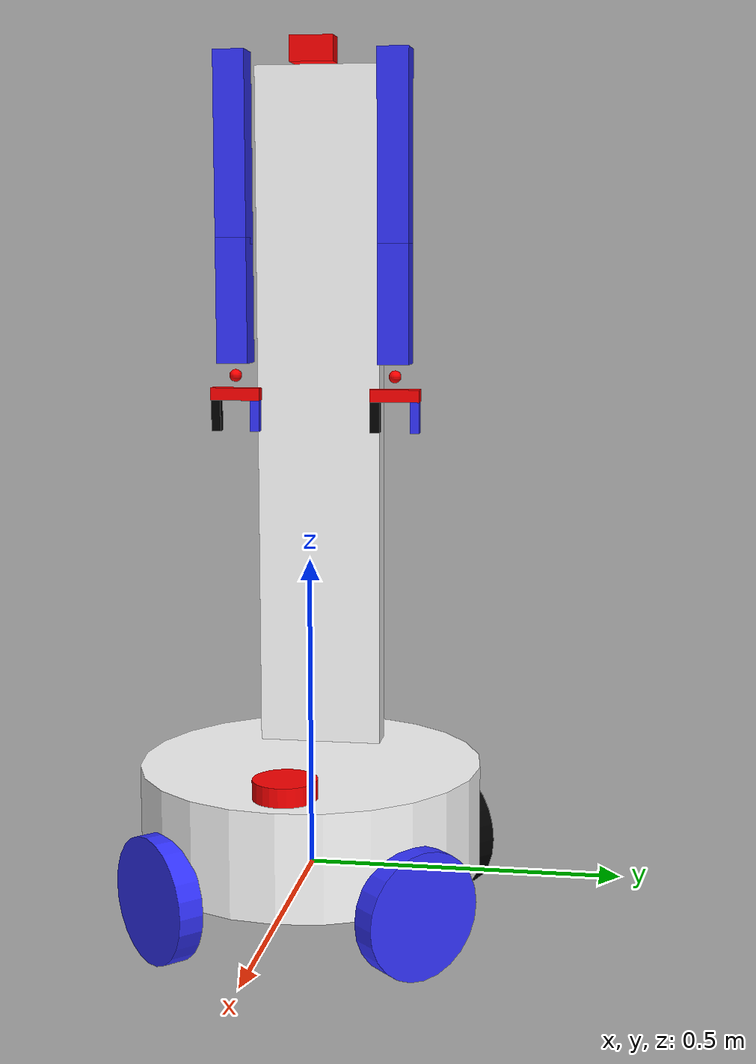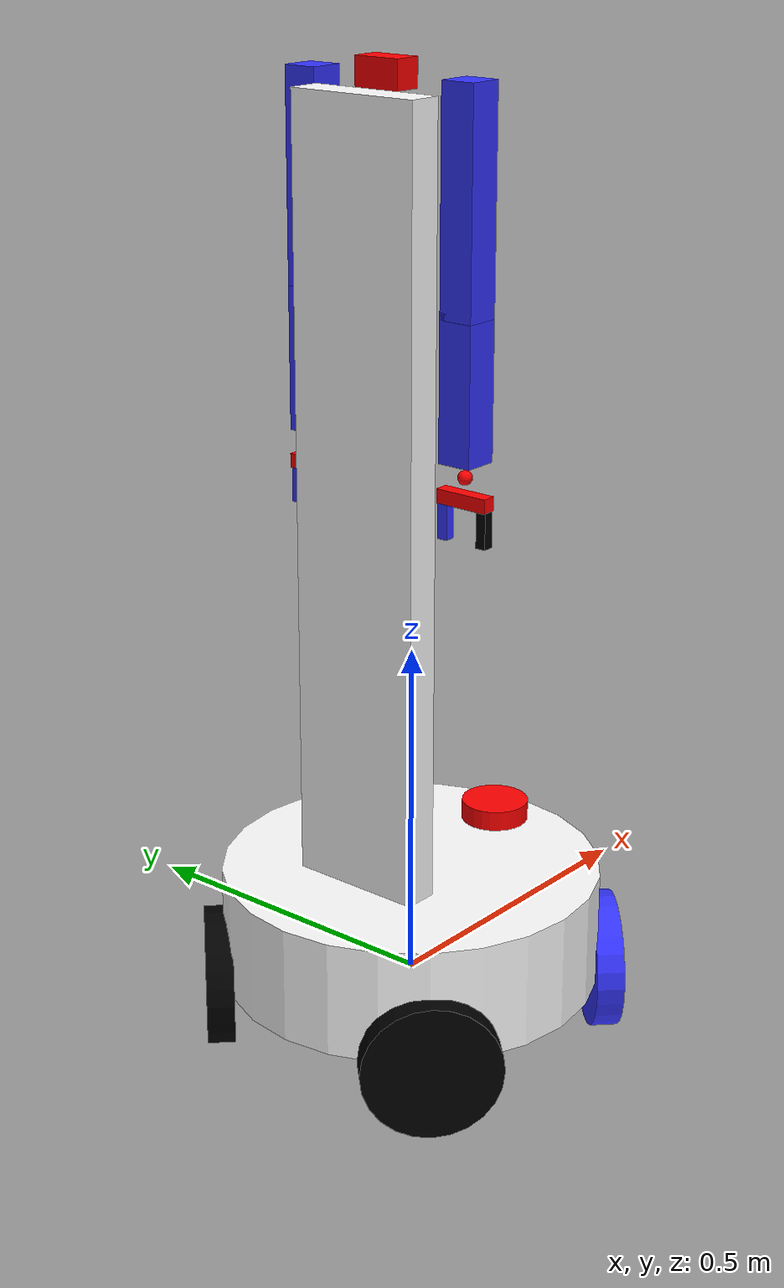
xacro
<?xml version="1.0"?>
<robot xmlns:xacro="http://www.ros.org/wiki/xacro"  name="robot">

    <xacro:include filename="robot_core_Rui.xacro" />
    <xacro:include filename="lidar.xacro" />
    <xacro:include filename="camera.xacro" />
    <xacro:include filename="left_arm.xacro" />
    <xacro:include filename="right_arm.xacro" />

</robot>

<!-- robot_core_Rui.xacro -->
<robot xmlns:xacro="http://www.ros.org/wiki/xacro" >

    <xacro:include filename="inertial_macros.xacro"/>
    <xacro:include filename="gazebo_control.xacro" />

    <material name="white">
        <color rgba="1 1 1 1"/>
    </material>
    <material name="blue">
        <color rgba="0.2 0.2 1 1"/>
    </material>
    <material name="black">
        <color rgba="0 0 0 1"/>
    </material>
    <material name="red">
        <color rgba="1 0 0 1"/>
    </material>

    <!--BASE LINK-->
    <link name="base_link">
    </link>

    <!--BASE FOOTPRINT LINK-->
    <joint name="base_footprint_joint" type="fixed">
        <parent link="base_link"/>
        <child link="base_footprint"/>
        <origin xyz="0 0 0" rpy="0 0 0"/>
    </joint>

    <link name="base_footprint">
    </link>

    <!--CHASSI-->
    <joint name="chassi_joint" type="fixed">
        <parent link="base_link"/>
        <child link="chassi_link"/>
        <origin xyz="0 0 0"/> <!--VIRADO PARA X-->
    </joint>

    <link name="chassi_link">
        <visual>
            <origin xyz="0 0 0.085"/>
            <geometry>
                <cylinder radius="0.275" length="0.17"/>
            </geometry>
            <material name="white"/>
        </visual>
        <collision>
            <origin xyz="0 0 0.085"/>
            <geometry>
                <cylinder radius="0.275" length="0.17"/>
            </geometry>
        </collision>
        <xacro:inertial_cylinder mass="0.1" length="0.17" radius="0.275">
            <origin xyz="0 0 0.085" rpy="0 0 0"/>
        </xacro:inertial_cylinder>
    </link>

    <gazebo reference="chassi_link">
        <material>Gazebo/White</material>
    </gazebo>

    <!--BODY-->
    <joint name="body_joint" type="fixed">
        <parent link="chassi_link"/>
        <child link="body_link"/>
        <origin xyz="-0.1 0 0.18" rpy="0 0 0"/>
    </joint>

    <link name="body_link">
        <visual>
            <origin xyz="0 0 0.55" rpy="0 0 ${pi/2}"/>
            <geometry>
                <box size="0.2 0.05 1.1"/>
            </geometry>
            <material name="white"/>
        </visual>
        <collision>
            <origin xyz="0 0 0.55" rpy="0 0 ${pi/2}"/>
            <geometry>
                <box size="0.2 0.05 1.1"/>
            </geometry>
        </collision>
        <xacro:inertial_box mass="0.1" x="0.2" y="0.05" z="1.1">
            <origin xyz="0 0 0.55" rpy="0 0 0"/>
        </xacro:inertial_box>
    </link>

    <gazebo reference="body_link">
        <material>Gazebo/White</material>
    </gazebo>

    <!--WHEELS-->

    <!--LEFT FRONT-->
    <joint name="left_front_joint" type="fixed">
        <parent link="chassi_link"/>
        <child link="left_front_link"/>
        <origin xyz="0.2 0.2 0" rpy="-${pi/2} 0 -${pi/4}"/>
    </joint>

    <link name="left_front_link">
        <visual>
            <geometry>
                <cylinder radius="0.1" length="0.04"/>
            </geometry>
            <material name="blue"/>
        </visual>
        <collision>
            <geometry>
                <cylinder radius="0.1" length="0.04"/>
            </geometry>
        </collision>
        <xacro:inertial_cylinder mass="0.1" length="0.04" radius="0.1">
            <origin xyz="0 0 0" rpy="0 0 0"/>
        </xacro:inertial_cylinder>
    </link>

    <gazebo reference="left_front_link">
        <material>Gazebo/Blue</material>
        <mu1 value="0.001"/>
        <mu2 value="0.001"/>
    </gazebo>

    <!--LEFT BACK-->
    <joint name="left_back_joint" type="fixed">
        <parent link="chassi_link"/>
        <child link="left_back_link"/>
        <origin xyz="-0.2 0.2 0" rpy="0 -${pi/2} -${pi/4}"/>
    </joint>

    <link name="left_back_link">
        <visual>
            <geometry>
                <cylinder radius="0.1" length="0.04"/>
            </geometry>
            <material name="black"/>
        </visual>
        <collision>
            <geometry>
                <cylinder radius="0.1" length="0.04"/>
            </geometry>
        </collision>
        <xacro:inertial_cylinder mass="0.1" length="0.04" radius="0.1">
            <origin xyz="0 0 0" rpy="0 0 0"/>
        </xacro:inertial_cylinder>
    </link>

    <gazebo reference="left_back_link">
        <material>Gazebo/Black</material>
        <mu1 value="0.001"/>
        <mu2 value="0.001"/>
    </gazebo>

    <!--RIGHT FRONT-->
    <joint name="right_front_joint" type="fixed">
        <parent link="chassi_link"/>
        <child link="right_front_link"/>
        <origin xyz="0.2 -0.2 0" rpy="0 ${pi/2} -${pi/4}"/>
    </joint>

    <link name="right_front_link">
        <visual>
            <geometry>
                <cylinder radius="0.1" length="0.04"/>
            </geometry>
            <material name="blue"/>
        </visual>
        <collision>
            <geometry>
                <cylinder radius="0.1" length="0.04"/>
            </geometry>
        </collision>
        <xacro:inertial_cylinder mass="0.1" length="0.04" radius="0.1">
            <origin xyz="0 0 0" rpy="0 0 0"/>
        </xacro:inertial_cylinder>
    </link>

    <gazebo reference="right_front_link">
        <material>Gazebo/Blue</material>
        <mu1 value="0.001"/>
        <mu2 value="0.001"/>
    </gazebo>

    <!--RIGHT BACK-->
    <joint name="right_back_joint" type="fixed">
        <parent link="chassi_link"/>
        <child link="right_back_link"/>
        <origin xyz="-0.2 -0.2 0" rpy="${pi/2} 0 -${pi/4}"/>
    </joint>

    <link name="right_back_link">
        <visual>
            <geometry>
                <cylinder radius="0.1" length="0.04"/>
            </geometry>
            <material name="black"/>
        </visual>
        <collision>
            <geometry>
                <cylinder radius="0.1" length="0.04"/>
            </geometry>
        </collision>
        <xacro:inertial_cylinder mass="0.1" length="0.04" radius="0.1">
            <origin xyz="0 0 0" rpy="0 0 0"/>
        </xacro:inertial_cylinder>
    </link>

    <gazebo reference="right_back_link">
        <material>Gazebo/Black</material>
        <mu1 value="0.001"/>
        <mu2 value="0.001"/>
    </gazebo>

    <xacro:omni_steering/>

</robot>

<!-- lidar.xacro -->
<robot xmlns:xacro="http://www.ros.org/wiki/xacro">

    <joint name="lidar_joint" type="fixed">
        <parent link="chassi_link"/>
        <child link="lidar_frame"/>
        <origin xyz="0.2 0 0.18" rpy="0 0 0"/>
    </joint>

    <link name="lidar_frame">
        <visual>
            <geometry>
                <cylinder radius="0.05" length="0.04"/>
            </geometry>
            <material name="red"/>
        </visual>
        <collision>
            <geometry>
                <cylinder radius="0.05" length="0.04"/>
            </geometry>
        </collision>
        <xacro:inertial_cylinder mass="0.1" length="0.04" radius="0.05">
            <origin xyz="0 0 0" rpy="0 0 0"/>
        </xacro:inertial_cylinder>
    </link>

    <gazebo reference="lidar_frame">
        <material>Gazebo/Red</material>

        <sensor name="laser" type="ray">
            <pose> 0 0 0 0 0 0 </pose>
            <visualize>false</visualize>
            <update_rate>10</update_rate>
            <ray>
                <scan>
                    <horizontal>
                        <samples>360</samples>
                        <min_angle>-2.356</min_angle> <!--180 degrees-->
                        <max_angle>2.356</max_angle>
                    </horizontal>
                </scan>
                <range>
                    <min>0.3</min>
                    <max>12</max>
                </range>
            </ray>
            <plugin name="laser_controller" filename="libgazebo_ros_ray_sensor.so">
                <ros>
                    <argument>~/out:=scan</argument>
                </ros>
                <output_type>sensor_msgs/LaserScan</output_type>
                <frame_name>lidar_frame</frame_name>
            </plugin>
        </sensor>
    </gazebo>

</robot>

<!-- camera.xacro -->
<robot xmlns:xacro="http://www.ros.org/wiki/xacro">

    <joint name="neck_joint" type="fixed">
        <parent link="body_link"/>
        <child link="neck_link"/>
        <origin xyz="0.045 0 1.12" rpy="0 0 0"/>
    </joint>

    <link name="neck_link">
        <xacro:inertial_box mass="0.1" x="0" y="0" z="0">
            <origin xyz="0 0 0" rpy="0 0 0"/>
        </xacro:inertial_box>
    </link>

    <joint name="camera_joint_z" type="revolute">
        <parent link="neck_link"/>
        <child link="camera_link_z"/>
        <origin xyz="0 0 0" rpy="0 0 0"/>
        <axis xyz="0 1 0"/>
        <limit effort="1000.0" lower="0.0" upper="0.548" velocity="0.5"/>
    </joint>

    <link name="camera_link_z">
        <xacro:inertial_box mass="0.1" x="0" y="0" z="0">
            <origin xyz="0 0 0" rpy="0 0 0"/>
        </xacro:inertial_box>
    </link>

    <joint name="camera_joint_y" type="revolute">
        <parent link="camera_link_z"/>
        <child link="camera_link_y"/>
        <origin xyz="0 0 0" rpy="0 0 0"/>
        <axis xyz="0 0 1"/>
        <limit effort="1000.0" lower="-0.548" upper="0.548" velocity="0.5"/>
    </joint>

    <link name="camera_link_y">
        <xacro:inertial_box mass="0.1" x="0" y="0" z="0">
            <origin xyz="0 0 0" rpy="0 0 0"/>
        </xacro:inertial_box>
    </link>

    <joint name="camera_joint" type="fixed">
        <parent link="camera_link_y"/>
        <child link="camera_link"/>
        <origin xyz="0 0 0" rpy="0 0 0"/>
    </joint>

    <link name="camera_link">
        <visual>
            <geometry>
                <box size="0.04 0.07 0.04"/>
            </geometry>
            <material name="red"/>
        </visual>
        <xacro:inertial_box mass="0.1" x="0.04" y="0.07" z="0.04">
            <origin xyz="0 0 0" rpy="0 0 0"/>
        </xacro:inertial_box>
    </link>

    <joint name="camera_optical_joint" type="fixed">
        <parent link="camera_link"/>
        <child link="camera_link_optical"/>
        <origin xyz="0 0 0" rpy="${-pi/2} 0 ${-pi/2}"/>
    </joint>

    <link name="camera_link_optical"></link>

    <gazebo reference="camera_link">
        <material>Gazebo/Red</material>

        <sensor name="camera" type="camera">
            <pose> 0 0 0 0 0 0 </pose>
            <visualize>true</visualize>
            <update_rate>10</update_rate>
            <camera>
                <horizontal_fov>1.089</horizontal_fov>
                <image>
                    <format>R8G8B8</format>
                    <width>640</width>
                    <height>480</height>
                </image>
                <clip>
                    <near>0.05</near>
                    <far>8.0</far>
                </clip>
            </camera>
            <plugin name="camera_controller" filename="libgazebo_ros_camera.so">
                <frame_name>camera_link_optical</frame_name>
            </plugin>
        </sensor>
    </gazebo>

</robot>

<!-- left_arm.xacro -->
<robot xmlns:xacro="http://www.ros.org/wiki/xacro">

    <!--3 juntas ombro + 2 juntas cotovelo + 2 mao + 1 garra __ 7DOF-->

    <!--SHOULDER-ELBOW-->

    <joint name="L_shoulder_joint" type="fixed">
        <parent link="body_link"/>
        <child link="L_shoulder_aux_link"/>
        <origin xyz="0.05 0.13 1.05" rpy="0 0 0"/>
    </joint>

    <link name="L_shoulder_aux_link">
        <xacro:inertial_box mass="0.1" x="0" y="0" z="0">
            <origin xyz="0 0 0" rpy="0 0 0"/>
        </xacro:inertial_box>
    </link>

    <joint name="L_shoulder_joint_y" type="revolute">
        <parent link="L_shoulder_aux_link"/>
        <child link="L_shoulder_link_y"/>
        <origin xyz="0 0 0" rpy="0 0 0"/>
        <axis xyz="1 0 0"/>
        <limit effort="1000.0" lower="0" upper="0.785" velocity="0.5"/>
    </joint>

    <link name="L_shoulder_link_y">
        <xacro:inertial_box mass="0.1" x="0" y="0" z="0">
            <origin xyz="0 0 0" rpy="0 0 0"/>
        </xacro:inertial_box>
    </link>

    <joint name="L_shoulder_joint_x" type="revolute">
        <parent link="L_shoulder_link_y"/>
        <child link="L_shoulder_link_x"/>
        <origin xyz="0 0 0" rpy="0 0 0"/>
        <axis xyz="0 -1 0"/>
        <limit effort="1000.0" lower="-0.785" upper="2.356" velocity="0.5"/>
    </joint>

    <link name="L_shoulder_link_x">
        <xacro:inertial_box mass="0.1" x="0" y="0" z="0">
            <origin xyz="0 0 0" rpy="0 0 0"/>
        </xacro:inertial_box>
    </link>

    <joint name="L_shoulder_final_joint" type="fixed">
        <parent link="L_shoulder_link_x"/>
        <child link="L_shoulder_link"/>
        <origin xyz="0 0 0" rpy="0 0 0"/>
    </joint>

    <link name="L_shoulder_link">
        <visual>
            <origin xyz="0 0 -0.08" rpy="0 0 ${pi/2}"/>
            <geometry>
                <box size="0.05 0.05 0.3"/>
            </geometry>
            <material name="blue"/>
        </visual>
        <collision>
            <origin xyz="0 0 -0.08" rpy="0 0 ${pi/2}"/>
            <geometry>
                <box size="0.05 0.05 0.2"/>
            </geometry>
        </collision>
        <xacro:inertial_box mass="0.1" x="0.05" y="0.05" z="0.2">
            <origin xyz="0 0 -0.08" rpy="0 0 0"/>
        </xacro:inertial_box>
    </link>

    <gazebo reference="L_shoulder_link">
        <material>Gazebo/Blue</material>
    </gazebo>

    <!--LIGAÇAO ELBOW-->

    <joint name="L_shoulder_arm_joint" type="fixed">
        <parent link="L_shoulder_link"/>
        <child link="L_SE_link"/>
        <origin xyz="0 0 -0.2" rpy="0 0 0"/>
    </joint>

    <link name="L_SE_link">
        <visual>
            <geometry>
                <sphere radius="0.01"/>
            </geometry>
            <material name="red"/>
        </visual>
        <collision>
            <geometry>
                <sphere radius="0.01"/>
            </geometry>
        </collision>
        <xacro:inertial_sphere mass="0.1" radius="0.01">
            <origin xyz="0 0 0" rpy="0 0 0"/>
        </xacro:inertial_sphere>
    </link>

    <gazebo reference="L_SE_link">
        <material>Gazebo/Red</material>
    </gazebo>

    <!--ELBOW-WRIST-->

    <joint name="L_elbow_joint" type="fixed">
        <parent link="L_SE_link"/>
        <child link="L_elbow_aux_link"/>
        <origin xyz="0 0 -0.04" rpy="0 0 0"/>
    </joint>

    <link name="L_elbow_aux_link">
        <xacro:inertial_box mass="0.1" x="0" y="0" z="0">
            <origin xyz="0 0 0" rpy="0 0 0"/>
        </xacro:inertial_box>
    </link>

    <joint name="L_elbow_joint_z" type="revolute">
        <parent link="L_elbow_aux_link"/>
        <child link="L_elbow_link_z"/>
        <origin xyz="0 0 0" rpy="0 0 0"/>
        <axis xyz="0 0 -1"/>
        <limit effort="1000.0" lower="0" upper="1.445" velocity="0.5"/>
    </joint>

    <link name="L_elbow_link_z">
        <xacro:inertial_box mass="0.1" x="0" y="0" z="0">
            <origin xyz="0 0 0" rpy="0 0 0"/>
        </xacro:inertial_box>
    </link>

    <joint name="L_elbow_joint_x" type="revolute">
        <parent link="L_elbow_link_z"/>
        <child link="L_elbow_link_x"/>
        <origin xyz="0 0 0" rpy="0 0 0"/>
        <axis xyz="0 -1 0"/>
        <limit effort="1000.0" lower="0" upper="2.225" velocity="0.5"/>
    </joint>

    <link name="L_elbow_link_x">
        <xacro:inertial_box mass="0.1" x="0" y="0" z="0">
            <origin xyz="0 0 0" rpy="0 0 0"/>
        </xacro:inertial_box>
    </link>

    <joint name="L_elbow_final_joint" type="fixed">
        <parent link="L_elbow_link_x"/>
        <child link="L_elbow_link"/>
        <origin xyz="0 0 0" rpy="0 0 0"/>
    </joint>

    <link name="L_elbow_link">
        <visual>
            <origin xyz="0 0 -0.08" rpy="0 0 ${pi/2}"/>
            <geometry>
                <box size="0.05 0.05 0.2"/>
            </geometry>
            <material name="blue"/>
        </visual>
        <collision>
            <origin xyz="0 0 -0.08" rpy="0 0 ${pi/2}"/>
            <geometry>
                <box size="0.05 0.05 0.3"/>
            </geometry>
        </collision>
        <xacro:inertial_box mass="0.1" x="0.05" y="0.05" z="0.2">
            <origin xyz="0 0 -0.08" rpy="0 0 0"/>
        </xacro:inertial_box>
    </link>

    <gazebo reference="L_elbow_link">
        <material>Gazebo/Blue</material>
    </gazebo>

    <!--LIGAÇAO WRIST-HAND-->

    <joint name="L_WH_joint" type="fixed">
        <parent link="L_elbow_link"/>
        <child link="L_WH_link"/>
        <origin xyz="0 0 -0.2" rpy="0 0 0"/>
    </joint>

    <link name="L_WH_link">
        <visual>
            <geometry>
                <sphere radius="0.01"/>
            </geometry>
            <material name="red"/>
        </visual>
        <collision>
            <geometry>
                <sphere radius="0.01"/>
            </geometry>
        </collision>
        <xacro:inertial_sphere mass="0.1" radius="0.01">
            <origin xyz="0 0 0" rpy="0 0 0"/>
        </xacro:inertial_sphere>
    </link>

    <gazebo reference="L_WH_link">
        <material>Gazebo/Red</material>
    </gazebo>

    <!--HAND-->

    <joint name="L_hand_joint" type="fixed">
        <parent link="L_WH_link"/>
        <child link="L_hand_aux_link"/>
        <origin xyz="0 0 -0.03" rpy="0 0 0"/>
    </joint>

    <link name="L_hand_aux_link">
        <xacro:inertial_box mass="0.1" x="0" y="0" z="0">
            <origin xyz="0 0 0" rpy="0 0 0"/>
        </xacro:inertial_box>
    </link>

    <joint name="L_hand_joint_z" type="revolute">
        <parent link="L_hand_aux_link"/>
        <child link="L_hand_link_z"/>
        <origin xyz="0 0 0" rpy="0 0 0"/>
        <axis xyz="0 0 -1"/>
        <limit effort="1000.0" lower="-0.785" upper="0.785" velocity="0.5"/>
    </joint>

    <link name="L_hand_link_z">
        <xacro:inertial_box mass="0.1" x="0" y="0" z="0">
            <origin xyz="0 0 0" rpy="0 0 0"/>
        </xacro:inertial_box>
    </link>

    <joint name="L_hand_joint_x" type="revolute">
        <parent link="L_hand_link_z"/>
        <child link="L_hand_link_x"/>
        <origin xyz="0 0 0" rpy="0 0 0"/>
        <axis xyz="0 -1 0"/>
        <limit effort="1000.0" lower="-0.785" upper="0.785" velocity="0.5"/>
    </joint>

    <link name="L_hand_link_x">
        <xacro:inertial_box mass="0.1" x="0" y="0" z="0">
            <origin xyz="0 0 0" rpy="0 0 0"/>
        </xacro:inertial_box>
    </link>

    <joint name="L_hand_final_joint" type="fixed">
        <parent link="L_hand_link_x"/>
        <child link="L_hand_base_link"/>
        <origin xyz="0 0 0" rpy="0 0 0"/>
    </joint>

    <link name="L_hand_base_link">
        <visual>
            <geometry>
                <box size="0.02 0.08 0.02"/>
            </geometry>
            <material name="red"/>
        </visual>
        <collision>
            <geometry>
                <box size="0.02 0.08 0.02"/>
            </geometry>
        </collision>
        <xacro:inertial_box mass="0.1" x="0.02" y="0.08" z="0.02">
            <origin xyz="0 0 0" rpy="0 0 0"/>
        </xacro:inertial_box>
    </link>
    <gazebo reference="L_hand_base_link">
        <material>Gazebo/White</material>
    </gazebo>

    <!--GRIPPER-->

    <joint name="L_left_gripper_slide_joint" type="prismatic">
        <parent link="L_hand_base_link"/>
        <child link="L_left_gripper_link"/>
        <origin xyz="0 0.032 -0.035"/>
        <axis xyz="0 -1 0"/>
        <limit effort="10.0" lower="0" upper="0.015" velocity="0.1"/>
    </joint>

    <link name="L_left_gripper_link">
        <visual>
            <geometry>
                <box size="0.015 0.015 0.05"/>
            </geometry>
            <material name="blue"/>
        </visual>
        <collision>
            <geometry>
                <box size="0.015 0.015 0.05"/>
            </geometry>
        </collision>
        <xacro:inertial_box mass="0.1" x="0.015" y="0.015" z="0.05">
            <origin xyz="0 0 0" rpy="0 0 0"/>
        </xacro:inertial_box>
    </link>

    <joint name="L_right_gripper_slide_joint" type="prismatic">
        <parent link="L_hand_base_link"/>
        <child link="L_right_gripper_link"/>
        <origin xyz="0 -0.032 -0.035"/>
        <axis xyz="0 1 0"/>
        <limit effort="10.0" lower="0" upper="0.015" velocity="0.1"/>
    </joint>

    <link name="L_right_gripper_link">
        <visual>
            <geometry>
                <box size="0.015 0.015 0.05"/>
            </geometry>
            <material name="black"/>
        </visual>
        <collision>
            <geometry>
                <box size="0.015 0.015 0.05"/>
            </geometry>
        </collision>
        <xacro:inertial_box mass="0.1" x="0.015" y="0.015" z="0.05">
            <origin xyz="0 0 0" rpy="0 0 0"/>
        </xacro:inertial_box>
    </link>

    <gazebo reference="L_left_gripper_link">
        <material>Gazebo/Red</material>
    </gazebo>
    <gazebo reference="L_right_gripper_link">
        <material>Gazebo/Red</material>
    </gazebo>

</robot>

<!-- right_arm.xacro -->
<robot xmlns:xacro="http://www.ros.org/wiki/xacro">

    <!--3 juntas ombro + 2 juntas cotovelo + 2 mao + 1 garra __ 7DOF-->

    <!--SHOULDER-ELBOW-->

    <joint name="R_shoulder_joint" type="fixed">
        <parent link="body_link"/>
        <child link="R_shoulder_aux_link"/>
        <origin xyz="0.05 -0.13 1.05" rpy="0 0 0"/>
    </joint>

    <link name="R_shoulder_aux_link">
        <xacro:inertial_box mass="0.1" x="0" y="0" z="0">
            <origin xyz="0 0 0" rpy="0 0 0"/>
        </xacro:inertial_box>
    </link>

    <joint name="R_shoulder_joint_y" type="revolute">
        <parent link="R_shoulder_aux_link"/>
        <child link="R_shoulder_link_y"/>
        <origin xyz="0 0 0" rpy="0 0 0"/>
        <axis xyz="-1 0 0"/>
        <limit effort="1000.0" lower="0" upper="0.785" velocity="0.5"/>
    </joint>

    <link name="R_shoulder_link_y">
        <xacro:inertial_box mass="0.1" x="0" y="0" z="0">
            <origin xyz="0 0 0" rpy="0 0 0"/>
        </xacro:inertial_box>
    </link>

    <joint name="R_shoulder_joint_x" type="revolute">
        <parent link="R_shoulder_link_y"/>
        <child link="R_shoulder_link_x"/>
        <origin xyz="0 0 0" rpy="0 0 0"/>
        <axis xyz="0 -1 0"/>
        <limit effort="1000.0" lower="-0.785" upper="2.356" velocity="0.5"/>
    </joint>

    <link name="R_shoulder_link_x">
        <xacro:inertial_box mass="0.1" x="0" y="0" z="0">
            <origin xyz="0 0 0" rpy="0 0 0"/>
        </xacro:inertial_box>
    </link>

    <joint name="R_shoulder_final_joint" type="fixed">
        <parent link="R_shoulder_link_x"/>
        <child link="R_shoulder_link"/>
        <origin xyz="0 0 0" rpy="0 0 0"/>
    </joint>

    <link name="R_shoulder_link">
        <visual>
            <origin xyz="0 0 -0.08" rpy="0 0 ${pi/2}"/>
            <geometry>
                <box size="0.05 0.05 0.3"/>
            </geometry>
            <material name="blue"/>
        </visual>
        <collision>
            <origin xyz="0 0 -0.08" rpy="0 0 ${pi/2}"/>
            <geometry>
                <box size="0.05 0.05 0.2"/>
            </geometry>
        </collision>
        <xacro:inertial_box mass="0.1" x="0.05" y="0.05" z="0.2">
            <origin xyz="0 0 -0.08" rpy="0 0 0"/>
        </xacro:inertial_box>
    </link>

    <gazebo reference="R_shoulder_link">
        <material>Gazebo/Blue</material>
    </gazebo>

    <!--LIGAÇAO ELBOW-->

    <joint name="R_shoulder_arm_joint" type="fixed">
        <parent link="R_shoulder_link"/>
        <child link="R_SE_link"/>
        <origin xyz="0 0 -0.2" rpy="0 0 0"/>
    </joint>

    <link name="R_SE_link">
        <visual>
            <geometry>
                <sphere radius="0.01"/>
            </geometry>
            <material name="red"/>
        </visual>
        <collision>
            <geometry>
                <sphere radius="0.01"/>
            </geometry>
        </collision>
        <xacro:inertial_sphere mass="0.1" radius="0.01">
            <origin xyz="0 0 0" rpy="0 0 0"/>
        </xacro:inertial_sphere>
    </link>

    <gazebo reference="R_SE_link">
        <material>Gazebo/Red</material>
    </gazebo>

    <!--ELBOW-WRIST-->

    <joint name="R_elbow_joint" type="fixed">
        <parent link="R_SE_link"/>
        <child link="R_elbow_aux_link"/>
        <origin xyz="0 0 -0.04" rpy="0 0 0"/>
    </joint>

    <link name="R_elbow_aux_link">
        <xacro:inertial_box mass="0.1" x="0" y="0" z="0">
            <origin xyz="0 0 0" rpy="0 0 0"/>
        </xacro:inertial_box>
    </link>

    <joint name="R_elbow_joint_z" type="revolute">
        <parent link="R_elbow_aux_link"/>
        <child link="R_elbow_link_z"/>
        <origin xyz="0 0 0" rpy="0 0 0"/>
        <axis xyz="0 0 1"/>
        <limit effort="1000.0" lower="0" upper="1.445" velocity="0.5"/>
    </joint>

    <link name="R_elbow_link_z">
        <xacro:inertial_box mass="0.1" x="0" y="0" z="0">
            <origin xyz="0 0 0" rpy="0 0 0"/>
        </xacro:inertial_box>
    </link>

    <joint name="R_elbow_joint_x" type="revolute">
        <parent link="R_elbow_link_z"/>
        <child link="R_elbow_link_x"/>
        <origin xyz="0 0 0" rpy="0 0 0"/>
        <axis xyz="0 -1 0"/>
        <limit effort="1000.0" lower="0" upper="2.225" velocity="0.5"/>
    </joint>

    <link name="R_elbow_link_x">
        <xacro:inertial_box mass="0.1" x="0" y="0" z="0">
            <origin xyz="0 0 0" rpy="0 0 0"/>
        </xacro:inertial_box>
    </link>

    <joint name="R_elbow_final_joint" type="fixed">
        <parent link="R_elbow_link_x"/>
        <child link="R_elbow_link"/>
        <origin xyz="0 0 0" rpy="0 0 0"/>
    </joint>

    <link name="R_elbow_link">
        <visual>
            <origin xyz="0 0 -0.08" rpy="0 0 ${pi/2}"/>
            <geometry>
                <box size="0.05 0.05 0.2"/>
            </geometry>
            <material name="blue"/>
        </visual>
        <collision>
            <origin xyz="0 0 -0.08" rpy="0 0 ${pi/2}"/>
            <geometry>
                <box size="0.05 0.05 0.3"/>
            </geometry>
        </collision>
        <xacro:inertial_box mass="0.1" x="0.05" y="0.05" z="0.2">
            <origin xyz="0 0 -0.08" rpy="0 0 0"/>
        </xacro:inertial_box>
    </link>

    <gazebo reference="R_elbow_link">
        <material>Gazebo/Blue</material>
    </gazebo>

    <!--LIGAÇAO WRIST-HAND-->

    <joint name="R_WH_joint" type="fixed">
        <parent link="R_elbow_link"/>
        <child link="R_WH_link"/>
        <origin xyz="0 0 -0.2" rpy="0 0 0"/>
    </joint>

    <link name="R_WH_link">
        <visual>
            <geometry>
                <sphere radius="0.01"/>
            </geometry>
            <material name="red"/>
        </visual>
        <collision>
            <geometry>
                <sphere radius="0.01"/>
            </geometry>
        </collision>
        <xacro:inertial_sphere mass="0.1" radius="0.01">
            <origin xyz="0 0 0" rpy="0 0 0"/>
        </xacro:inertial_sphere>
    </link>

    <gazebo reference="R_WH_link">
        <material>Gazebo/Red</material>
    </gazebo>

    <!--HAND-->

    <joint name="R_hand_joint" type="fixed">
        <parent link="R_WH_link"/>
        <child link="R_hand_aux_link"/>
        <origin xyz="0 0 -0.03" rpy="0 0 0"/>
    </joint>

    <link name="R_hand_aux_link">
        <xacro:inertial_box mass="0.1" x="0" y="0" z="0">
            <origin xyz="0 0 0" rpy="0 0 0"/>
        </xacro:inertial_box>
    </link>

    <joint name="R_hand_joint_z" type="revolute">
        <parent link="R_hand_aux_link"/>
        <child link="R_hand_link_z"/>
        <origin xyz="0 0 0" rpy="0 0 0"/>
        <axis xyz="0 0 1"/>
        <limit effort="1000.0" lower="-0.785" upper="0.785" velocity="0.5"/>
    </joint>

    <link name="R_hand_link_z">
        <xacro:inertial_box mass="0.1" x="0" y="0" z="0">
            <origin xyz="0 0 0" rpy="0 0 0"/>
        </xacro:inertial_box>
    </link>

    <joint name="R_hand_joint_x" type="revolute">
        <parent link="R_hand_link_z"/>
        <child link="R_hand_link_x"/>
        <origin xyz="0 0 0" rpy="0 0 0"/>
        <axis xyz="0 -1 0"/>
        <limit effort="1000.0" lower="-0.785" upper="0.785" velocity="0.5"/>
    </joint>

    <link name="R_hand_link_x">
        <xacro:inertial_box mass="0.1" x="0" y="0" z="0">
            <origin xyz="0 0 0" rpy="0 0 0"/>
        </xacro:inertial_box>
    </link>

    <joint name="R_hand_final_joint" type="fixed">
        <parent link="R_hand_link_x"/>
        <child link="R_hand_base_link"/>
        <origin xyz="0 0 0" rpy="0 0 0"/>
    </joint>

    <link name="R_hand_base_link">
        <visual>
            <geometry>
                <box size="0.02 0.08 0.02"/>
            </geometry>
            <material name="red"/>
        </visual>
        <collision>
            <geometry>
                <box size="0.02 0.08 0.02"/>
            </geometry>
        </collision>
        <xacro:inertial_box mass="0.1" x="0.02" y="0.08" z="0.02">
            <origin xyz="0 0 0" rpy="0 0 0"/>
        </xacro:inertial_box>
    </link>
    <gazebo reference="R_hand_base_link">
        <material>Gazebo/White</material>
    </gazebo>

    <!--GRIPPER-->

    <joint name="R_left_gripper_slide_joint" type="prismatic">
        <parent link="R_hand_base_link"/>
        <child link="R_left_gripper_link"/>
        <origin xyz="0 0.032 -0.035"/>
        <axis xyz="0 -1 0"/>
        <limit effort="10.0" lower="0" upper="0.015" velocity="0.1"/>
    </joint>

    <link name="R_left_gripper_link">
        <visual>
            <geometry>
                <box size="0.015 0.015 0.05"/>
            </geometry>
            <material name="blue"/>
        </visual>
        <collision>
            <geometry>
                <box size="0.015 0.015 0.05"/>
            </geometry>
        </collision>
        <xacro:inertial_box mass="0.1" x="0.015" y="0.015" z="0.05">
            <origin xyz="0 0 0" rpy="0 0 0"/>
        </xacro:inertial_box>
    </link>

    <joint name="R_right_gripper_slide_joint" type="prismatic">
        <parent link="R_hand_base_link"/>
        <child link="R_right_gripper_link"/>
        <origin xyz="0 -0.032 -0.035"/>
        <axis xyz="0 1 0"/>
        <limit effort="10.0" lower="0" upper="0.015" velocity="0.1"/>
    </joint>

    <link name="R_right_gripper_link">
        <visual>
            <geometry>
                <box size="0.015 0.015 0.05"/>
            </geometry>
            <material name="black"/>
        </visual>
        <collision>
            <geometry>
                <box size="0.015 0.015 0.05"/>
            </geometry>
        </collision>
        <xacro:inertial_box mass="0.1" x="0.015" y="0.015" z="0.05">
            <origin xyz="0 0 0" rpy="0 0 0"/>
        </xacro:inertial_box>
    </link>

    <gazebo reference="R_left_gripper_link">
        <material>Gazebo/Red</material>
    </gazebo>
    <gazebo reference="R_right_gripper_link">
        <material>Gazebo/Red</material>
    </gazebo>

</robot>
